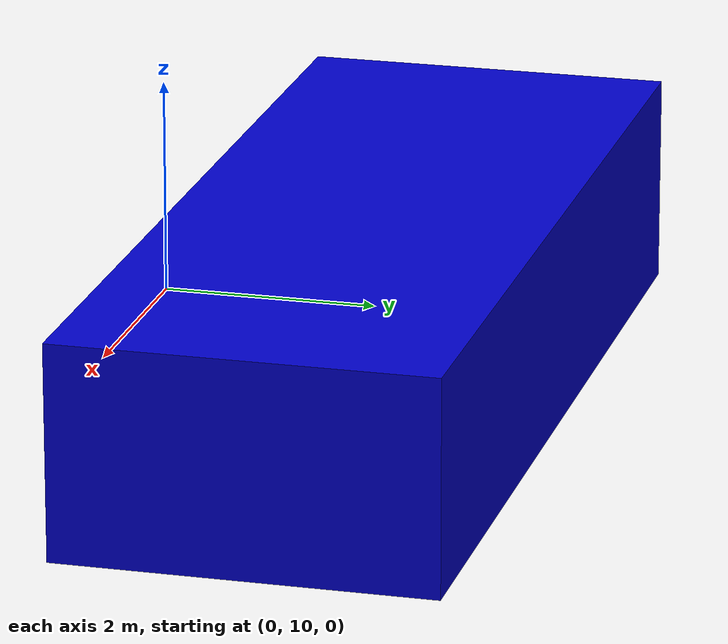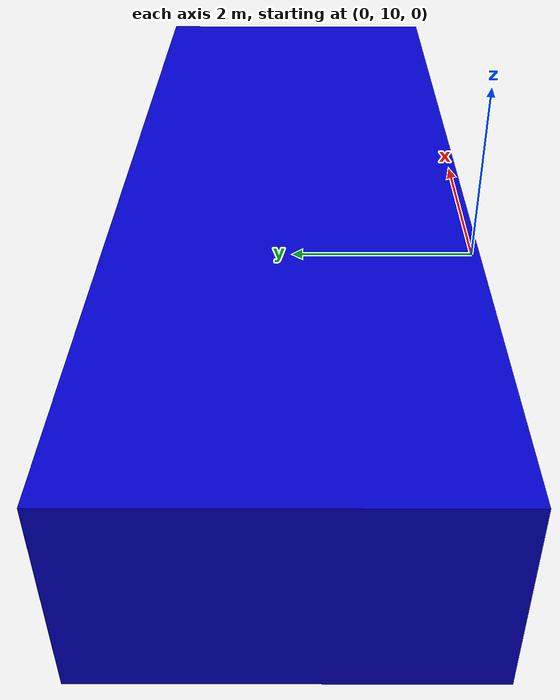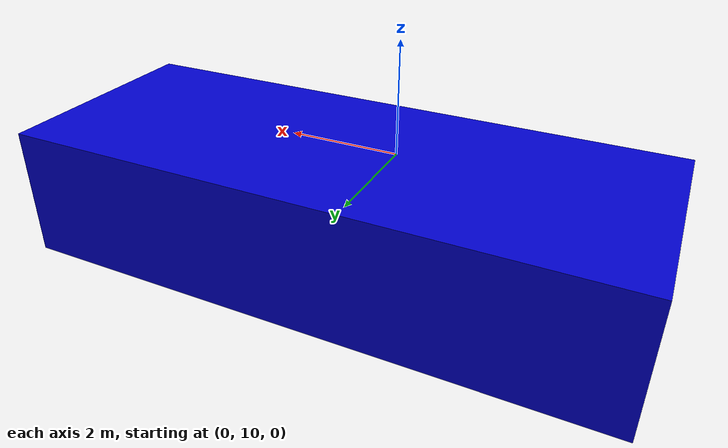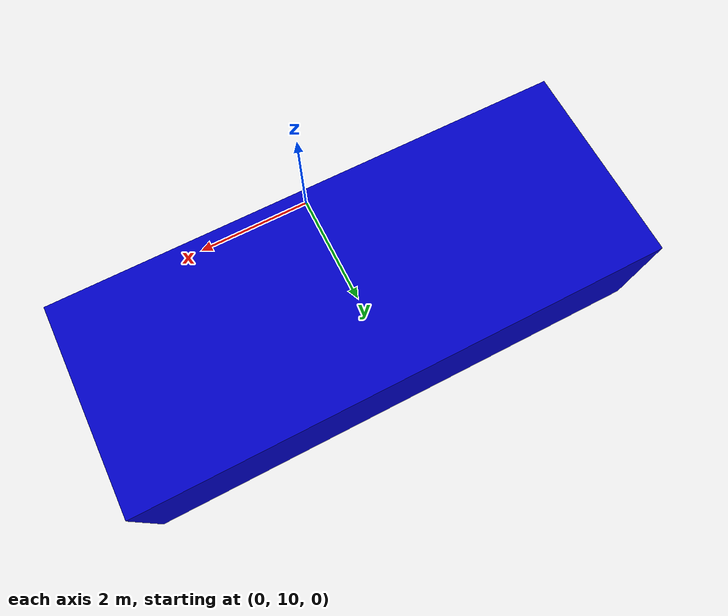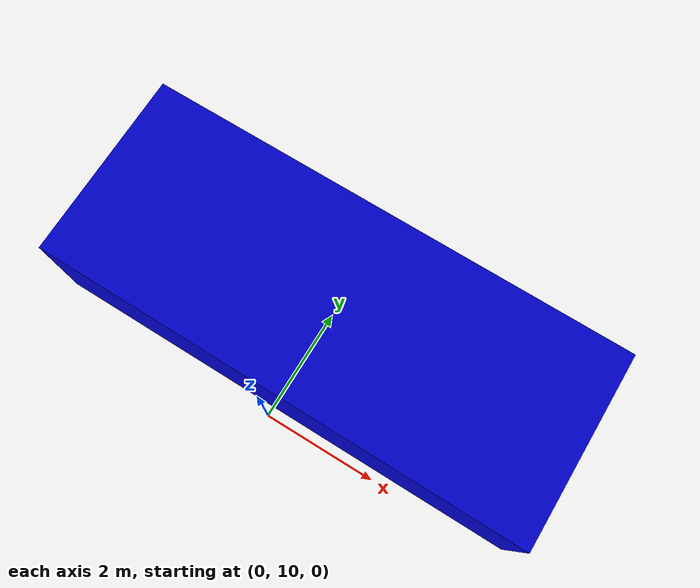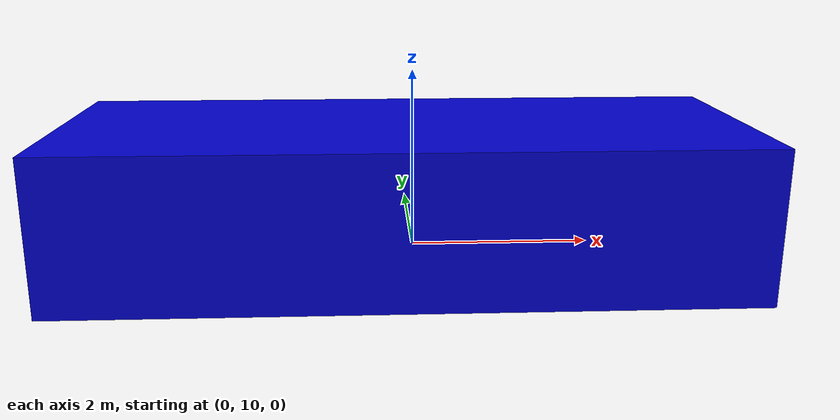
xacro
<?xml version="1.0"?>
<robot xmlns:xacro="http://www.ros.org/wiki/xacro" name="parking_car">

  <xacro:property name="Lenght" value="9" />
  <xacro:property name="width" value="3.5" />
  <xacro:property name="height" value="2" />
  <xacro:property name="mass" value="1000" />
  <xacro:property name="name" value="car" />

 <xacro:macro name="default_inertial" params="mass">  <!-- Need this?!  -->
    <inertial>
        <origin xyz="0 0 0" rpy="0 0 0" />
        <mass value="${mass}" />
        <inertia ixx="1.0" ixy="0.0" ixz="0.0"
           iyy="1.0" iyz="0.0"
           izz="1.0" />
    </inertial>
  </xacro:macro>

  <link name="body_link">
    <visual>
      <origin xyz="0 12 0" rpy="0 0 0" />
      <geometry>
         <box size="${Lenght} ${width} ${height}"/>
      </geometry>
      <material name="blue">
        <color rgba="0 0 .8 1"/>
      </material>
    </visual>
    <xacro:default_inertial mass="10"/>
  </link>

</robot>
